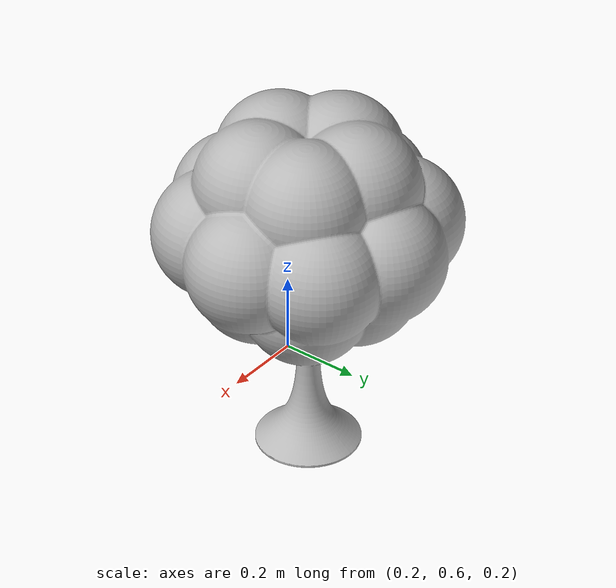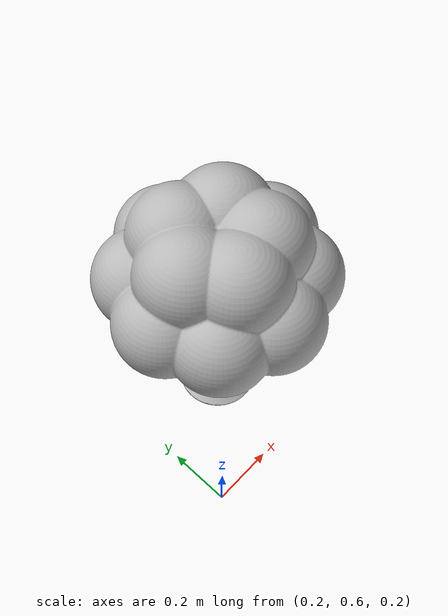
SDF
<?xml version="1.0" ?>
<sdf version="1.6">
  <model name="vegetable_crop">
    <static>true</static>

    <link name="link">
      <visual name="visual">
        <geometry>
          <mesh>
            <uri>model://vegetable_crop/meshes/vegetable_crop.stl</uri>
            <scale>0.001 0.001 0.001</scale>
          </mesh>
        </geometry>
      </visual>

      <collision name="collision">
        <geometry>
          <box>
            <size>0.4 0.4 0.8</size>
          </box>
        </geometry>
      </collision>
    </link>
  </model>
</sdf>
